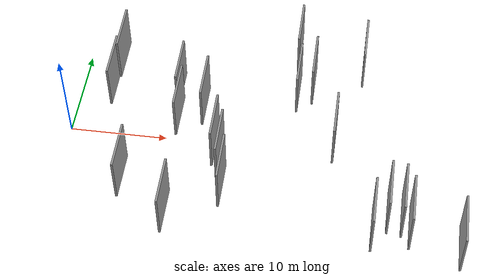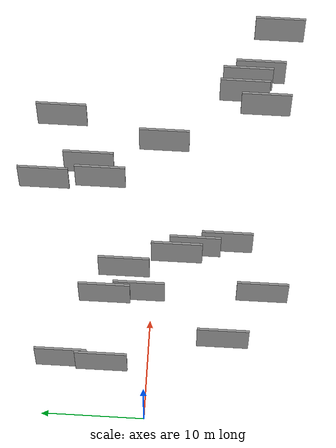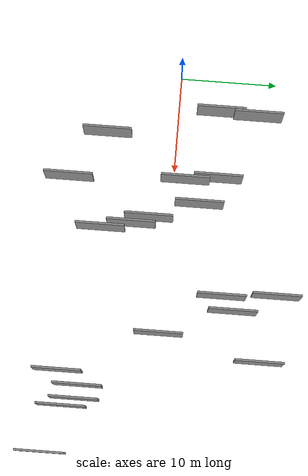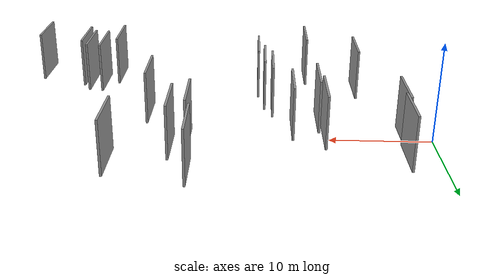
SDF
<sdf version="1.6">
 <world name="default">
  <scene>
   <sky><clouds><speed>12</speed></clouds></sky>
   <ambient>0.4 0.4 0.4 1</ambient>
   <background>0.7 0.7 0.7 1</background>
   <shadows>1</shadows>
  </scene>
  <gravity>0 0 -9.8066</gravity>
  <magnetic_field>6e-06 2.3e-05 -4.2e-05</magnetic_field>
  <physics default="0" name="default_physics" type="ode">
   <ode>
    <solver>
     <type>quick</type>
     <iters>10</iters>
     <sor>1.0</sor>
     <use_dynamic_moi_rescaling>0</use_dynamic_moi_rescaling>
    </solver>
    <constraints>
     <cfm>0</cfm>
     <erp>0.2</erp>
     <contact_max_correcting_vel>100</contact_max_correcting_vel>
     <contact_surface_layer>0.001</contact_surface_layer>
    </constraints>
   </ode>
   <max_step_size>0.004</max_step_size>
   <real_time_factor>1</real_time_factor>
   <real_time_update_rate>250</real_time_update_rate>
  </physics>
  <light name="sun" type="directional">
   <pose>0 0 10 0 0 0</pose>
   <diffuse>0.8 0.8 0.8 1</diffuse>
   <specular>0.2 0.2 0.2 1</specular>
   <attenuation>
    <range>1000</range>
    <constant>0.9</constant>
    <linear>0.01</linear>
    <quadratic>0.001</quadratic>
   </attenuation>
   <direction>-0.5 0.1 -0.9</direction>
  </light>
  <model name="grey_wall_1">
   <static>1</static>
   <pose>29.6323 9.9711 2.5 0.000000 0.000000 1.570796</pose>
   <link name="link">
    <pose>0 0 2.50 0 0 0</pose>
    <collision name="collision"><geometry><box><size>5.00 0.2 5.00</size></box></geometry></collision>
    <visual name="visual">
     <cast_shadows>0</cast_shadows>
     <geometry><box><size>5.00 0.2 5.00</size></box></geometry>
     <material>
      <script>
       <uri>model://grey_wall/materials/scripts</uri>
       <uri>model://grey_wall/materials/textures</uri>
       <name>vrc/grey_wall</name>
      </script>
     </material>
    </visual>
   </link>
  </model>
  <model name="grey_wall_2">
   <static>1</static>
   <pose>11.9183 -10.7763 2.5 0.000000 0.000000 1.570796</pose>
   <link name="link">
    <pose>0 0 2.50 0 0 0</pose>
    <collision name="collision"><geometry><box><size>5.00 0.2 5.00</size></box></geometry></collision>
    <visual name="visual">
     <cast_shadows>0</cast_shadows>
     <geometry><box><size>5.00 0.2 5.00</size></box></geometry>
     <material>
      <script>
       <uri>model://grey_wall/materials/scripts</uri>
       <uri>model://grey_wall/materials/textures</uri>
       <name>vrc/grey_wall</name>
      </script>
     </material>
    </visual>
   </link>
  </model>
  <model name="grey_wall_3">
   <static>1</static>
   <pose>33.2315 -8.1666 2.5 0.000000 0.000000 1.570796</pose>
   <link name="link">
    <pose>0 0 2.50 0 0 0</pose>
    <collision name="collision"><geometry><box><size>5.00 0.2 5.00</size></box></geometry></collision>
    <visual name="visual">
     <cast_shadows>0</cast_shadows>
     <geometry><box><size>5.00 0.2 5.00</size></box></geometry>
     <material>
      <script>
       <uri>model://grey_wall/materials/scripts</uri>
       <uri>model://grey_wall/materials/textures</uri>
       <name>vrc/grey_wall</name>
      </script>
     </material>
    </visual>
   </link>
  </model>
  <model name="grey_wall_4">
   <static>1</static>
   <pose>31.8555 -10.3604 2.5 0.000000 0.000000 1.570796</pose>
   <link name="link">
    <pose>0 0 2.50 0 0 0</pose>
    <collision name="collision"><geometry><box><size>5.00 0.2 5.00</size></box></geometry></collision>
    <visual name="visual">
     <cast_shadows>0</cast_shadows>
     <geometry><box><size>5.00 0.2 5.00</size></box></geometry>
     <material>
      <script>
       <uri>model://grey_wall/materials/scripts</uri>
       <uri>model://grey_wall/materials/textures</uri>
       <name>vrc/grey_wall</name>
      </script>
     </material>
    </visual>
   </link>
  </model>
  <model name="grey_wall_5">
   <static>1</static>
   <pose>4.2791 8.1988 2.5 0.000000 0.000000 1.570796</pose>
   <link name="link">
    <pose>0 0 2.50 0 0 0</pose>
    <collision name="collision"><geometry><box><size>5.00 0.2 5.00</size></box></geometry></collision>
    <visual name="visual">
     <cast_shadows>0</cast_shadows>
     <geometry><box><size>5.00 0.2 5.00</size></box></geometry>
     <material>
      <script>
       <uri>model://grey_wall/materials/scripts</uri>
       <uri>model://grey_wall/materials/textures</uri>
       <name>vrc/grey_wall</name>
      </script>
     </material>
    </visual>
   </link>
  </model>
  <model name="grey_wall_6">
   <static>1</static>
   <pose>35.4188 -9.6532 2.5 0.000000 0.000000 1.570796</pose>
   <link name="link">
    <pose>0 0 2.50 0 0 0</pose>
    <collision name="collision"><geometry><box><size>5.00 0.2 5.00</size></box></geometry></collision>
    <visual name="visual">
     <cast_shadows>0</cast_shadows>
     <geometry><box><size>5.00 0.2 5.00</size></box></geometry>
     <material>
      <script>
       <uri>model://grey_wall/materials/scripts</uri>
       <uri>model://grey_wall/materials/textures</uri>
       <name>vrc/grey_wall</name>
      </script>
     </material>
    </visual>
   </link>
  </model>
  <model name="grey_wall_7">
   <static>1</static>
   <pose>40.2267 -11.4099 2.5 0.000000 0.000000 1.570796</pose>
   <link name="link">
    <pose>0 0 2.50 0 0 0</pose>
    <collision name="collision"><geometry><box><size>5.00 0.2 5.00</size></box></geometry></collision>
    <visual name="visual">
     <cast_shadows>0</cast_shadows>
     <geometry><box><size>5.00 0.2 5.00</size></box></geometry>
     <material>
      <script>
       <uri>model://grey_wall/materials/scripts</uri>
       <uri>model://grey_wall/materials/textures</uri>
       <name>vrc/grey_wall</name>
      </script>
     </material>
    </visual>
   </link>
  </model>
  <model name="grey_wall_8">
   <static>1</static>
   <pose>13.8173 2.7750 2.5 0.000000 0.000000 1.570796</pose>
   <link name="link">
    <pose>0 0 2.50 0 0 0</pose>
    <collision name="collision"><geometry><box><size>5.00 0.2 5.00</size></box></geometry></collision>
    <visual name="visual">
     <cast_shadows>0</cast_shadows>
     <geometry><box><size>5.00 0.2 5.00</size></box></geometry>
     <material>
      <script>
       <uri>model://grey_wall/materials/scripts</uri>
       <uri>model://grey_wall/materials/textures</uri>
       <name>vrc/grey_wall</name>
      </script>
     </material>
    </visual>
   </link>
  </model>
  <model name="grey_wall_9">
   <static>1</static>
   <pose>23.1406 5.7206 2.5 0.000000 0.000000 1.570796</pose>
   <link name="link">
    <pose>0 0 2.50 0 0 0</pose>
    <collision name="collision"><geometry><box><size>5.00 0.2 5.00</size></box></geometry></collision>
    <visual name="visual">
     <cast_shadows>0</cast_shadows>
     <geometry><box><size>5.00 0.2 5.00</size></box></geometry>
     <material>
      <script>
       <uri>model://grey_wall/materials/scripts</uri>
       <uri>model://grey_wall/materials/textures</uri>
       <name>vrc/grey_wall</name>
      </script>
     </material>
    </visual>
   </link>
  </model>
  <model name="grey_wall_10">
   <static>1</static>
   <pose>11.3944 1.1582 2.5 0.000000 0.000000 1.570796</pose>
   <link name="link">
    <pose>0 0 2.50 0 0 0</pose>
    <collision name="collision"><geometry><box><size>5.00 0.2 5.00</size></box></geometry></collision>
    <visual name="visual">
     <cast_shadows>0</cast_shadows>
     <geometry><box><size>5.00 0.2 5.00</size></box></geometry>
     <material>
      <script>
       <uri>model://grey_wall/materials/scripts</uri>
       <uri>model://grey_wall/materials/textures</uri>
       <name>vrc/grey_wall</name>
      </script>
     </material>
    </visual>
   </link>
  </model>
  <model name="grey_wall_11">
   <static>1</static>
   <pose>22.7421 11.3130 2.5 0.000000 0.000000 1.570796</pose>
   <link name="link">
    <pose>0 0 2.50 0 0 0</pose>
    <collision name="collision"><geometry><box><size>5.00 0.2 5.00</size></box></geometry></collision>
    <visual name="visual">
     <cast_shadows>0</cast_shadows>
     <geometry><box><size>5.00 0.2 5.00</size></box></geometry>
     <material>
      <script>
       <uri>model://grey_wall/materials/scripts</uri>
       <uri>model://grey_wall/materials/textures</uri>
       <name>vrc/grey_wall</name>
      </script>
     </material>
    </visual>
   </link>
  </model>
  <model name="grey_wall_12">
   <static>1</static>
   <pose>16.9407 -7.1374 2.5 0.000000 0.000000 1.570796</pose>
   <link name="link">
    <pose>0 0 2.50 0 0 0</pose>
    <collision name="collision"><geometry><box><size>5.00 0.2 5.00</size></box></geometry></collision>
    <visual name="visual">
     <cast_shadows>0</cast_shadows>
     <geometry><box><size>5.00 0.2 5.00</size></box></geometry>
     <material>
      <script>
       <uri>model://grey_wall/materials/scripts</uri>
       <uri>model://grey_wall/materials/textures</uri>
       <name>vrc/grey_wall</name>
      </script>
     </material>
    </visual>
   </link>
  </model>
  <model name="grey_wall_13">
   <static>1</static>
   <pose>27.3928 -0.4049 2.5 0.000000 0.000000 1.570796</pose>
   <link name="link">
    <pose>0 0 2.50 0 0 0</pose>
    <collision name="collision"><geometry><box><size>5.00 0.2 5.00</size></box></geometry></collision>
    <visual name="visual">
     <cast_shadows>0</cast_shadows>
     <geometry><box><size>5.00 0.2 5.00</size></box></geometry>
     <material>
      <script>
       <uri>model://grey_wall/materials/scripts</uri>
       <uri>model://grey_wall/materials/textures</uri>
       <name>vrc/grey_wall</name>
      </script>
     </material>
    </visual>
   </link>
  </model>
  <model name="grey_wall_14">
   <static>1</static>
   <pose>15.5740 -2.2764 2.5 0.000000 0.000000 1.570796</pose>
   <link name="link">
    <pose>0 0 2.50 0 0 0</pose>
    <collision name="collision"><geometry><box><size>5.00 0.2 5.00</size></box></geometry></collision>
    <visual name="visual">
     <cast_shadows>0</cast_shadows>
     <geometry><box><size>5.00 0.2 5.00</size></box></geometry>
     <material>
      <script>
       <uri>model://grey_wall/materials/scripts</uri>
       <uri>model://grey_wall/materials/textures</uri>
       <name>vrc/grey_wall</name>
      </script>
     </material>
    </visual>
   </link>
  </model>
  <model name="grey_wall_15">
   <static>1</static>
   <pose>24.6186 6.9523 2.5 0.000000 0.000000 1.570796</pose>
   <link name="link">
    <pose>0 0 2.50 0 0 0</pose>
    <collision name="collision"><geometry><box><size>5.00 0.2 5.00</size></box></geometry></collision>
    <visual name="visual">
     <cast_shadows>0</cast_shadows>
     <geometry><box><size>5.00 0.2 5.00</size></box></geometry>
     <material>
      <script>
       <uri>model://grey_wall/materials/scripts</uri>
       <uri>model://grey_wall/materials/textures</uri>
       <name>vrc/grey_wall</name>
      </script>
     </material>
    </visual>
   </link>
  </model>
  <model name="grey_wall_16">
   <static>1</static>
   <pose>7.0105 -7.1644 2.5 0.000000 0.000000 1.570796</pose>
   <link name="link">
    <pose>0 0 2.50 0 0 0</pose>
    <collision name="collision"><geometry><box><size>5.00 0.2 5.00</size></box></geometry></collision>
    <visual name="visual">
     <cast_shadows>0</cast_shadows>
     <geometry><box><size>5.00 0.2 5.00</size></box></geometry>
     <material>
      <script>
       <uri>model://grey_wall/materials/scripts</uri>
       <uri>model://grey_wall/materials/textures</uri>
       <name>vrc/grey_wall</name>
      </script>
     </material>
    </visual>
   </link>
  </model>
  <model name="grey_wall_17">
   <static>1</static>
   <pose>4.0653 4.3527 2.5 0.000000 0.000000 1.570796</pose>
   <link name="link">
    <pose>0 0 2.50 0 0 0</pose>
    <collision name="collision"><geometry><box><size>5.00 0.2 5.00</size></box></geometry></collision>
    <visual name="visual">
     <cast_shadows>0</cast_shadows>
     <geometry><box><size>5.00 0.2 5.00</size></box></geometry>
     <material>
      <script>
       <uri>model://grey_wall/materials/scripts</uri>
       <uri>model://grey_wall/materials/textures</uri>
       <name>vrc/grey_wall</name>
      </script>
     </material>
    </visual>
   </link>
  </model>
  <model name="grey_wall_18">
   <static>1</static>
   <pose>34.6201 -8.4127 2.5 0.000000 0.000000 1.570796</pose>
   <link name="link">
    <pose>0 0 2.50 0 0 0</pose>
    <collision name="collision"><geometry><box><size>5.00 0.2 5.00</size></box></geometry></collision>
    <visual name="visual">
     <cast_shadows>0</cast_shadows>
     <geometry><box><size>5.00 0.2 5.00</size></box></geometry>
     <material>
      <script>
       <uri>model://grey_wall/materials/scripts</uri>
       <uri>model://grey_wall/materials/textures</uri>
       <name>vrc/grey_wall</name>
      </script>
     </material>
    </visual>
   </link>
  </model>
  <model name="grey_wall_19">
   <static>1</static>
   <pose>16.3258 -4.0363 2.5 0.000000 0.000000 1.570796</pose>
   <link name="link">
    <pose>0 0 2.50 0 0 0</pose>
    <collision name="collision"><geometry><box><size>5.00 0.2 5.00</size></box></geometry></collision>
    <visual name="visual">
     <cast_shadows>0</cast_shadows>
     <geometry><box><size>5.00 0.2 5.00</size></box></geometry>
     <material>
      <script>
       <uri>model://grey_wall/materials/scripts</uri>
       <uri>model://grey_wall/materials/textures</uri>
       <name>vrc/grey_wall</name>
      </script>
     </material>
    </visual>
   </link>
  </model>
  <model name="grey_wall_20">
   <static>1</static>
   <pose>11.0237 4.5029 2.5 0.000000 0.000000 1.570796</pose>
   <link name="link">
    <pose>0 0 2.50 0 0 0</pose>
    <collision name="collision"><geometry><box><size>5.00 0.2 5.00</size></box></geometry></collision>
    <visual name="visual">
     <cast_shadows>0</cast_shadows>
     <geometry><box><size>5.00 0.2 5.00</size></box></geometry>
     <material>
      <script>
       <uri>model://grey_wall/materials/scripts</uri>
       <uri>model://grey_wall/materials/textures</uri>
       <name>vrc/grey_wall</name>
      </script>
     </material>
    </visual>
   </link>
  </model>
 </world>
</sdf>
